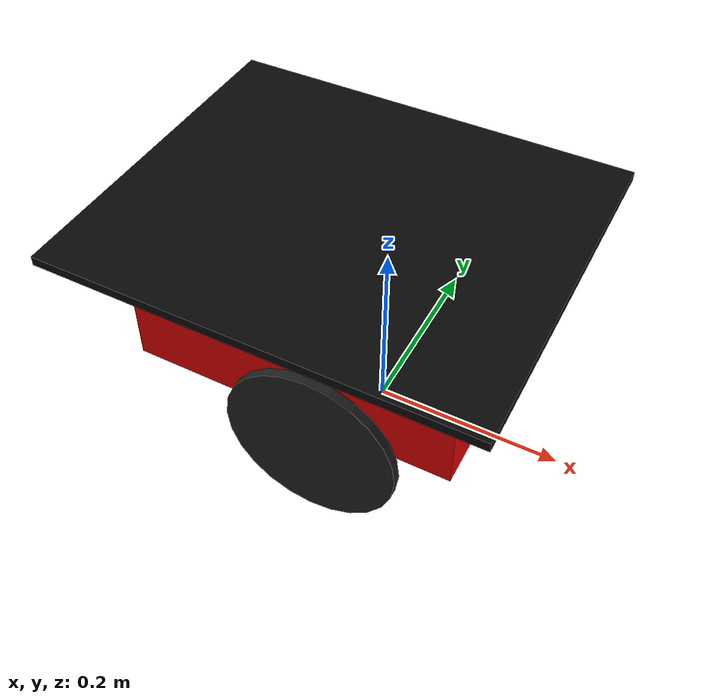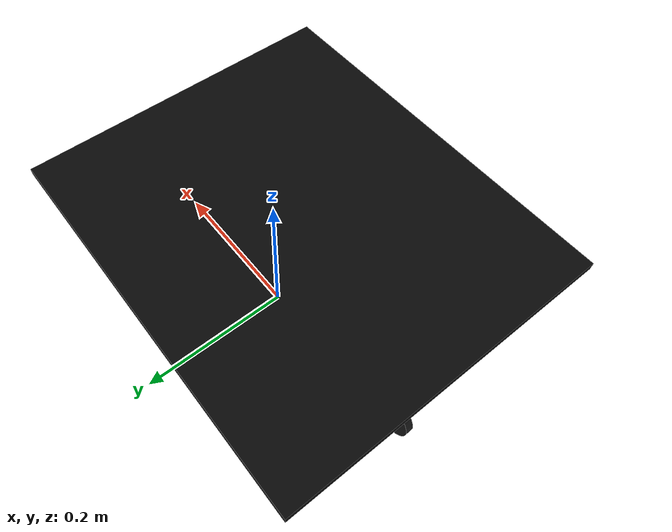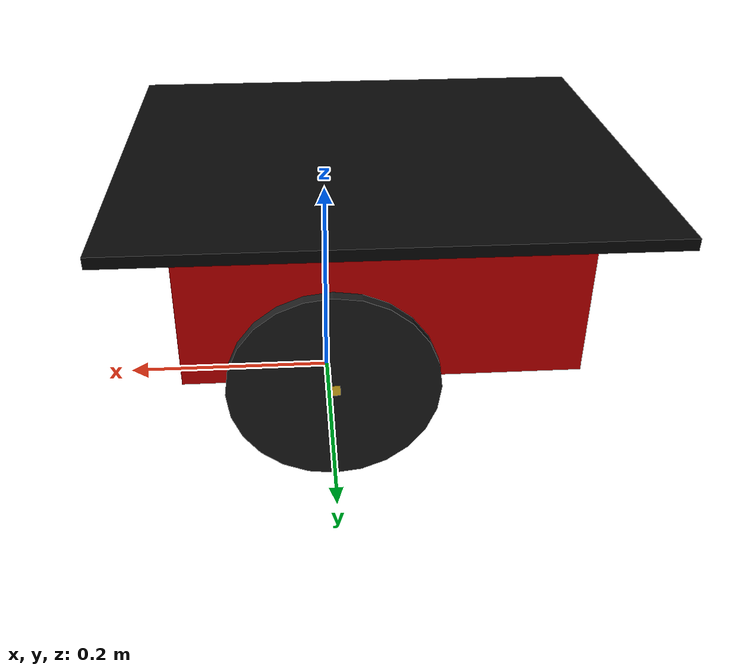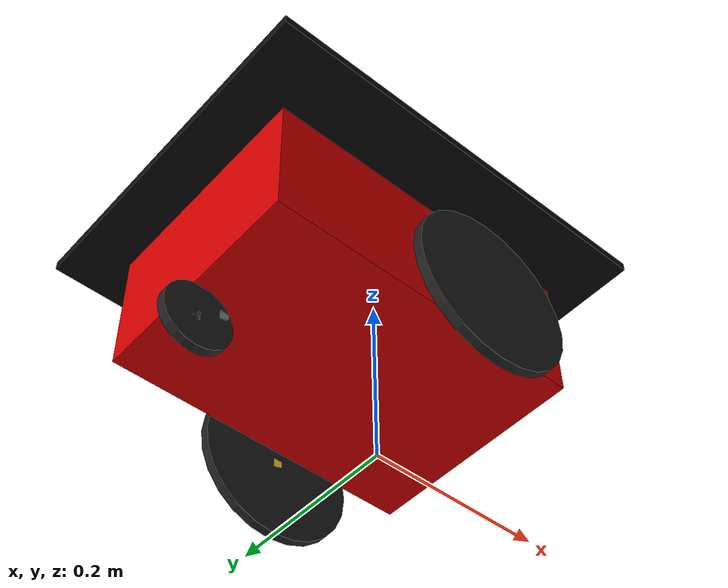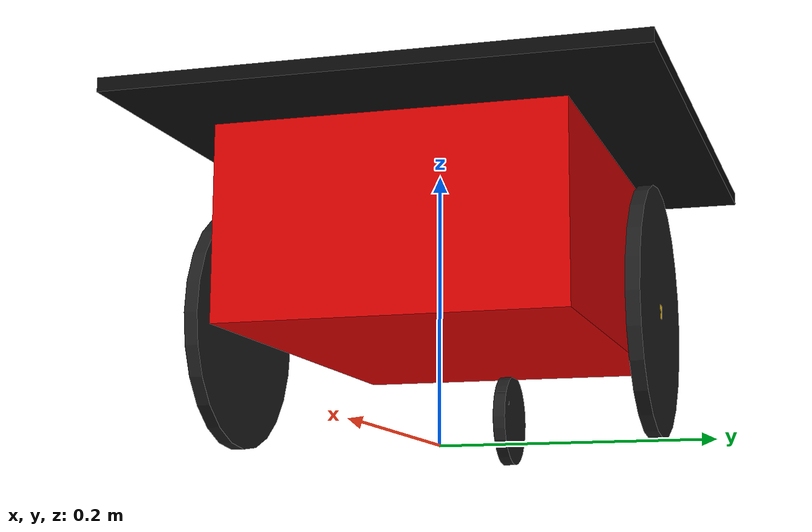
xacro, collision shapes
<?xml version='1.0'?>

<robot name="vribot" xmlns:xacro="http://www.ros.org/wiki/xacro">

  <xacro:include filename="$(find vribot_description)/urdf/p3dx/materials.xacro"/>
  <xacro:include filename="$(find vribot_description)/urdf/p3dx/p3dx_wheel.xacro"/>

  <!-- BEGIN turtlebot CONVENTION -->
  <link name="base_footprint"/>
  <joint name="base_joint" type="fixed">
    <origin xyz="0 0 0" rpy="0 0 0" />
    <parent link="base_footprint"/>
    <child link="base_link" />
  </joint>
  <!-- END turtlebot CONVENTION -->

  <!-- chassis -->
  <link name="base_link">
    <inertial>
      <mass value="3.5"/>
      <origin xyz="-0.05 0 0"/>
      <inertia ixx="1" ixy="0" ixz="0" iyy="1" iyz="0" izz="1"/>
    </inertial>

    <visual name="base_link">
      <origin xyz="-0.045 0 0.148" rpy="0 0 0"/>
      <geometry name="pioneer_geom">
        <mesh filename="package://vribot_description/meshes/p3dx/chassis.stl"/>
      </geometry>
      <material name="ChassisRed"/>
    </visual>

    <collision>
      <origin xyz="-0.045 0 0.145" rpy="0 0 0"/>
      <geometry>
        <box size="0.35 0.25 0.14"/>
      </geometry>
    </collision>
  </link>

  <!-- top_plate -->
  <link name="top_plate">
    <inertial>
      <mass value="0.01"/>
      <origin xyz="0 0 0"/>
      <inertia ixx="1" ixy="0" ixz="0" iyy="1" iyz="0" izz="1"/>
    </inertial>

    <visual name="top_plate">
      <origin xyz="0 0 0" rpy="0 0 0"/>
      <geometry name="top_geom">
        <mesh filename="package://vribot_description/meshes/p3dx/top.stl"/>
      </geometry>
      <material name="TopBlack"/>
    </visual>

    <collision>
      <origin xyz="0.0 0 0" rpy="0 0 0"/>
      <geometry name="pioneer_geom">
        <box size="0.45 0.38 0.01"/>
      </geometry>
    </collision>
  </link>

  <!-- swivel -->
  <link name="swivel">
    <inertial>
      <mass value="0.1"/>
      <origin xyz="0 0 0"/>
      <inertia ixx="0.01" ixy="0" ixz="0" iyy="0.01" iyz="0" izz="0.01"/>
    </inertial>

    <visual name="base_visual">
      <origin xyz="0 0 0" rpy="0 0 0"/>
      <geometry name="pioneer_geom">
        <mesh filename="package://vribot_description/meshes/p3dx/swivel.stl"/>
      </geometry>
      <material name="swivel">
        <color rgba="0.5 0.5 0.5 1"/>
      </material>
    </visual>

    <collision>
      <origin xyz="0 0 0" rpy="0 0 0"/>
      <geometry>
        <box size="0.01 0.01 0.01"/>
      </geometry>
    </collision>
  </link>

  <!-- center_hubcap -->
  <link name="center_hubcap">
    <inertial>
      <mass value="0.01"/>
      <origin xyz="0 0 0"/>
      <inertia ixx="0.012411765597" ixy="-0.000711733678" ixz="0.00050272983" iyy="0.015218160428" iyz="-0.000004273467" izz="0.011763977943"/>
    </inertial>

    <visual name="base_visual">
      <origin xyz="0 0 0" rpy="0 0 0"/>
      <geometry name="pioneer_geom">
        <mesh filename="package://vribot_description/meshes/p3dx/center_hubcap.stl"/>
      </geometry>
      <material name="swivel">
        <color rgba="0.5 0.5 0.5 1"/>
      </material>
    </visual>

    <collision>
      <origin xyz="0 0 0" rpy="0 0 0"/>
      <geometry>
        <box size="0.01 0.01 0.01"/>
      </geometry>
    </collision>
  </link>

  <!-- center_wheel -->
  <link name="center_wheel">
    <inertial>
      <mass value="0.1"/>
      <origin xyz="0 0 0"/>
      <inertia ixx="0.012411765597" ixy="-0.000711733678" ixz="0.00050272983" iyy="0.015218160428" iyz="-0.000004273467" izz="0.011763977943"/>
    </inertial>

    <visual name="base_visual">
      <origin xyz="0 0 0" rpy="0 0 0"/>
      <geometry name="pioneer_geom">
        <mesh filename="package://vribot_description/meshes/p3dx/center_wheel.stl"/>
      </geometry>
      <material name="WheelBlack"/>
    </visual>

    <collision>
      <origin xyz="0 0 0" rpy="${-3.1415927/2.0} 0 0"/>
      <geometry>
        <cylinder radius="0.0375" length="0.01"/>
      </geometry>
    </collision>
  </link>

  <!-- front_sonar -->
  <link name="sonar">
    <inertial>
      <mass value="0.0001"/>
      <origin xyz="0 0 0"/>
      <inertia ixx="1" ixy="0" ixz="0" iyy="1" iyz="0" izz="1"/>
    </inertial>

    <visual name="sonar_vis">
      <origin rpy="0 0 0" xyz="0 0 0"/>
      <geometry name="pioneer_geom">
        <mesh filename="package://vribot_description/meshes/p3dx/front_sonar.stl"/>
      </geometry>
      <material name="SonarYellow"/>
    </visual>

    <collision>
      <origin rpy="0 0 0" xyz="0 0 0"/>
      <geometry>
        <box size="0.01 0.01 0.01"/>
      </geometry>
    </collision>
  </link>

  <!-- Joints must be correctly ordered to work with iGibson -->
  <xacro:p3dx_wheel suffix="left" parent="base_link" reflect="1"/>
  <xacro:p3dx_wheel suffix="right" parent="base_link" reflect="-1"/>

  <joint name="base_top_joint" type="fixed">
    <origin xyz="-0.045 0 0.234" rpy="0 0 0"/>
    <parent link="base_link"/>
    <child link="top_plate"/>
  </joint>

  <joint name="base_swivel_joint" type="continuous">
    <origin xyz="-0.185 0 0.055" rpy="0 0 0"/>
    <axis xyz="0 0 1"/>
    <anchor xyz="0 0 0"/>
    <limit effort="100" velocity="100" k_velocity="0"/>
    <joint_properties damping="0.0" friction="0.0"/>
    <parent link="base_link"/>
    <child link="swivel"/>
  </joint>

  <joint name="swivel_hubcap_joint" type="continuous">
    <origin xyz="-0.026 0 -0.016" rpy="0 0 0"/>
    <axis xyz="0 1 0"/>
    <anchor xyz="0 0 0"/>
    <limit effort="100" velocity="100" k_velocity="0"/>
    <joint_properties damping="0.0" friction="0.0"/>
    <parent link="swivel"/>
    <child link="center_wheel"/>
  </joint>

  <joint name="center_wheel_joint" type="fixed">
    <origin xyz="-0.0035 0 -0.001" rpy="0 0 0"/>
    <parent link="center_wheel"/>
    <child link="center_hubcap"/>
  </joint>

  <joint name="base_front_joint" type="fixed">
    <origin rpy="0 0 0" xyz="0.109 0 0.209"/>
    <parent link="base_link"/>
    <child link="sonar"/>
  </joint>
</robot>

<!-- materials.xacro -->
<robot xmlns:xacro="http://www.ros.org/wiki/xacro">

	<material name="black">
    <color rgba="0.0 0.0 0.0 1.0"/>
  </material>

  <material name="blue">
    <color rgba="0.0 0.0 0.8 1.0"/>
  </material>

  <material name="green">
    <color rgba="0.0 0.8 0.0 1.0"/>
  </material>

  <material name="grey">
    <color rgba="0.2 0.2 0.2 1.0"/>
  </material>

  <material name="orange">
    <color rgba="${255/255} ${108/255} ${10/255} 1.0"/>
  </material>

  <material name="brown">
    <color rgba="${222/255} ${207/255} ${195/255} 1.0"/>
  </material>

  <material name="red">
    <color rgba="0.8 0.0 0.0 1.0"/>
  </material>

  <material name="white">
    <color rgba="1.0 1.0 1.0 1.0"/>
  </material>

	<material name="ChassisRed">
		<color rgba="0.851 0.0 0.0 1.0"/>
	</material>

	<material name="SonarYellow">
		<color rgba="0.715 0.583 0.210 1.0"/>
	</material>

	<material name="WheelBlack">
		<color rgba="0.117 0.117 0.117 1.0"/>
	</material>

	<material name="HubcapYellow">
		<color rgba="1.0 0.811 0.151 1.0"/>
	</material>

	<material name="TopBlack">
		<color rgba="0.038 0.038 0.038 1.0"/>
	</material>

</robot>

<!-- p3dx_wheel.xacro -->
<robot xmlns:xacro="http://www.ros.org/wiki/xacro">

	<!-- properties (constants) -->
	<xacro:property name="M_PI" value="3.14159"/>

	<!-- right/left hubcap + wheel -->
	<xacro:macro name="p3dx_wheel" params="suffix parent reflect">

		<!-- wheel -->
		<link name="p3dx_${suffix}_wheel">
			<inertial>
				<mass value="0.5"/>
				<origin xyz="0 0 0"/>
				<inertia ixx="0.012411765597" ixy="0" ixz="0" iyy="0.015218160428" iyz="0" izz="0.011763977943"/>
			</inertial>

			<visual name="base_visual">
				<origin xyz="0 0 0" rpy="0 0 0"/>
				<geometry name="pioneer_geom">
					<mesh filename="package://vribot_description/meshes/p3dx/${suffix}_wheel.stl"/>
				</geometry>
				<material name="WheelBlack">
					<color rgba="0.117 0.117 0.117 1"/>
				</material>
			</visual>

			<collision>
				<origin xyz="0 0 0" rpy="${-3.1415927/2} 0 0"/>
				<geometry>
					<cylinder radius="0.09" length="0.01"/>
				</geometry>
			</collision>
		</link>

		<!-- hubcap -->
		<link name="p3dx_${suffix}_hubcap">
			<inertial>
				<mass value="0.01"/>
				<origin xyz="0 0 0"/>
				<inertia ixx="0.012411765597" ixy="0" ixz="0" iyy="0.015218160428" iyz="0" izz="0.011763977943"/>
			</inertial>

			<visual name="base_visual">
				<origin xyz="0 0 0" rpy="0 0 0"/>
				<geometry name="pioneer_geom">
					<mesh filename="package://vribot_description/meshes/p3dx/${suffix}_hubcap.stl"/>
				</geometry>

				<material name="HubcapYellow">
					<color rgba="1.0 0.811 0.151 1.0"/>
				</material>
			</visual>

			<collision>
				<origin xyz="0 0 0" rpy="0 0 0"/>
				<geometry>
					<box size="0.01 0.01 0.01"/>
				</geometry>
			</collision>
		</link>

		<joint name="base_${suffix}_wheel_joint" type="continuous">
			<axis xyz="0 1 0"/>
			<anchor xyz="0 0 0"/>
			<limit effort="100" velocity="100"/>
			<joint_properties damping="0.0" friction="0.0"/>
			<origin xyz="0 ${reflect*0.158} 0.091" rpy="0 0 0"/>
			<parent link="base_link"/>
			<child link="p3dx_${suffix}_wheel"/>
		</joint>

		<joint name="base_${suffix}_hubcap_joint" type="fixed">
			<origin xyz="0 0 0" rpy="0 0 0"/>
			<parent link="p3dx_${suffix}_wheel"/>
			<child link="p3dx_${suffix}_hubcap"/>
		</joint>

		<!-- BEGIN gazebo elements -->
		<transmission name="${parent}_${suffix}_wheel_trans">
			<type>pr2_mechanism_model/SimpleTransmission</type>
			<joint name="base_${suffix}_wheel_joint">
				<hardwareInterface>EffortJointInterface</hardwareInterface>
			</joint>
			<actuator name="base_${suffix}_wheel_motor">
				<hardwareInterface>EffortJointInterface</hardwareInterface>
				<mechanicalReduction>${reflect * 624/35 * 80/19}</mechanicalReduction>
			</actuator>
		</transmission>

		<gazebo reference="p3dx_${suffix}_hubcap">
			<material>Gazebo/Yellow</material>
		</gazebo>

		<gazebo reference="p3dx_${suffix}_wheel">
			<material>Gazebo/Black</material>
			<mu1>0.5</mu1>
			<mu2>50.0</mu2>
			<kp>100000000.0</kp>
			<kd>1.0</kd>
		</gazebo>
		<!-- END gazebo elements -->

	</xacro:macro>

</robot>
